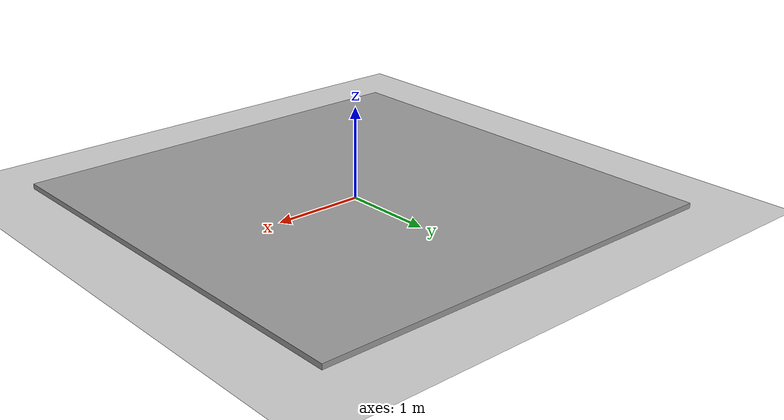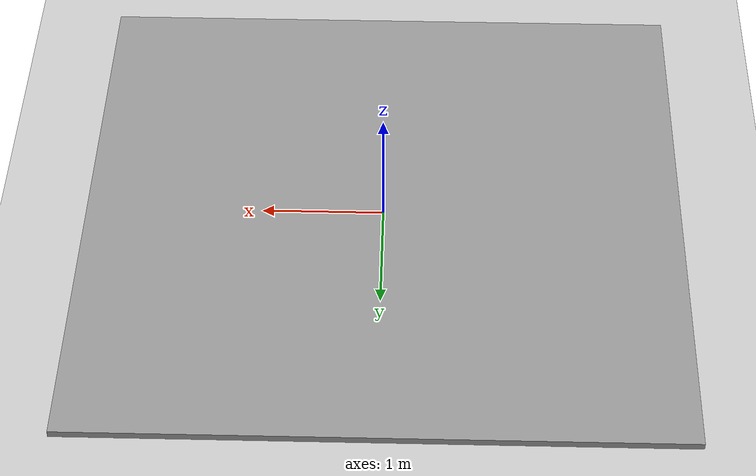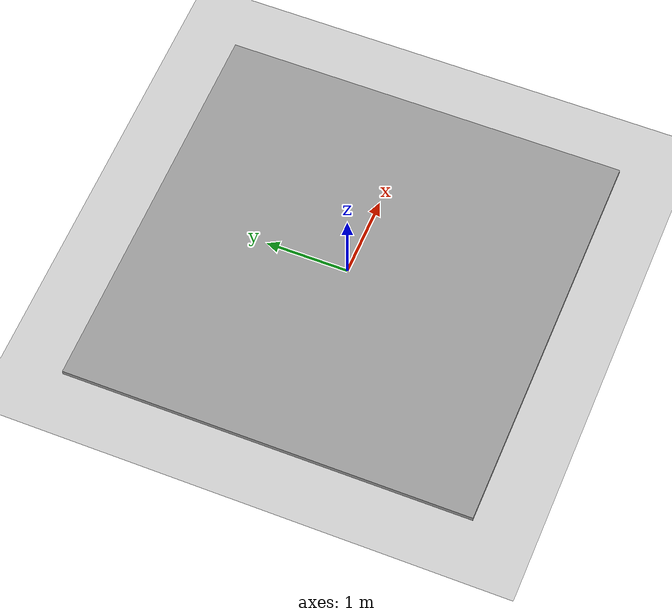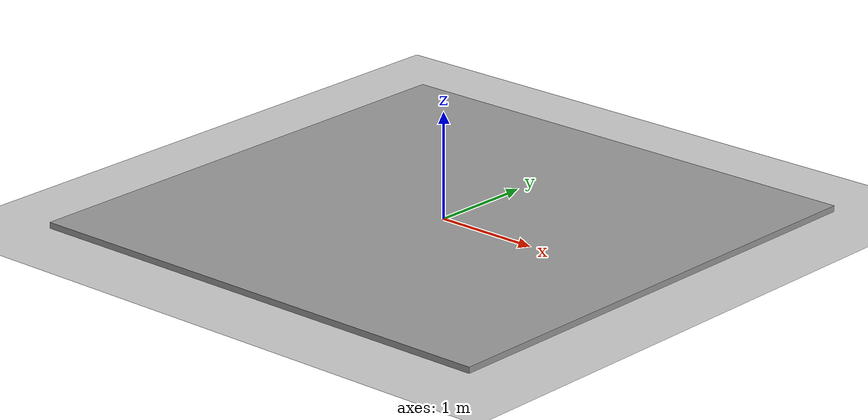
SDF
<sdf version="1.6">
 <world name="default">
  <light name="sun" type="directional">
   <pose>0 0 10 0 -0 0</pose>
   <diffuse>0.8 0.8 0.8 1</diffuse>
   <specular>0.2 0.2 0.2 1</specular>
   <attenuation>
    <range>1000</range>
    <constant>0.9</constant>
    <linear>0.01</linear>
    <quadratic>0.001</quadratic>
   </attenuation>
   <direction>-0.5 0.1 -0.9</direction>
  </light>
  <model name="ground_plane">
   <static>1</static>
   <link name="link">
    <collision name="collision">
     <geometry><plane><normal>0 0 1</normal><size>100 100</size></plane></geometry>
     <surface><friction><ode><mu>100</mu><mu2>50</mu2></ode></friction></surface>
    </collision>
    <visual name="visual">
     <cast_shadows>0</cast_shadows>
     <geometry><plane><normal>0 0 1</normal><size>100 100</size></plane></geometry>
     <material>
      <script><uri>file://media/materials/scripts/gazebo.material</uri><name>Gazebo/Grey</name></script>
     </material>
    </visual>
   </link>
  </model>
  <gravity>0 0 -9.8</gravity>
  <magnetic_field>6e-06 2.3e-05 -4.2e-05</magnetic_field>
  <atmosphere type="adiabatic"/>
  <physics name="default_physics" default="0" type="ode">
   <max_step_size>0.001</max_step_size>
   <real_time_factor>1</real_time_factor>
   <real_time_update_rate>1000</real_time_update_rate>
  </physics>
  <scene><ambient>0.4 0.4 0.4 1</ambient><background>0.7 0.7 0.7 1</background><shadows>1</shadows></scene>
  <spherical_coordinates>
   <surface_model>EARTH_WGS84</surface_model>
   <latitude_deg>0</latitude_deg>
   <longitude_deg>0</longitude_deg>
   <elevation>0</elevation>
   <heading_deg>0</heading_deg>
  </spherical_coordinates>
  <model name="Apriltag_Plane">
   <static>1</static>
   <link name="Apriltag_plane_link">
    <collision name="plane_collision"><geometry><box><size>4.9 4.9 0.1</size></box></geometry></collision>
    <visual name="plane_visual">
     <geometry><box><size>4.9 4.9 0.1</size></box></geometry>
     <material>
      <script>
       <uri>model://Apriltags_plane/materials/scripts</uri>
       <uri>model://Apriltags_plane/materials/textures</uri>
       <name>RepeatedApriltag</name>
      </script>
      <ambient>0.5 0.5 0.5 1</ambient>
      <diffuse>0.6 0.6 0.6 1</diffuse>
      <specular>0 0 0 1</specular>
      <emissive>0 0 0 1</emissive>
     </material>
    </visual>
   </link>
   <pose>0 0 0 0 -0 1.5708</pose>
  </model>
 </world>
</sdf>
